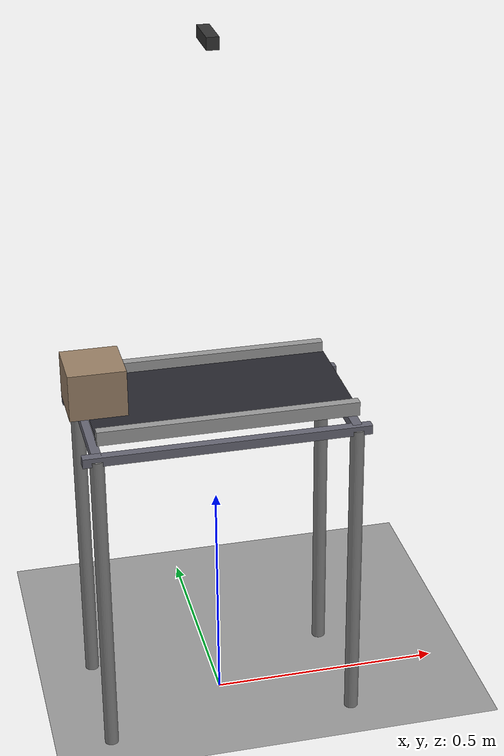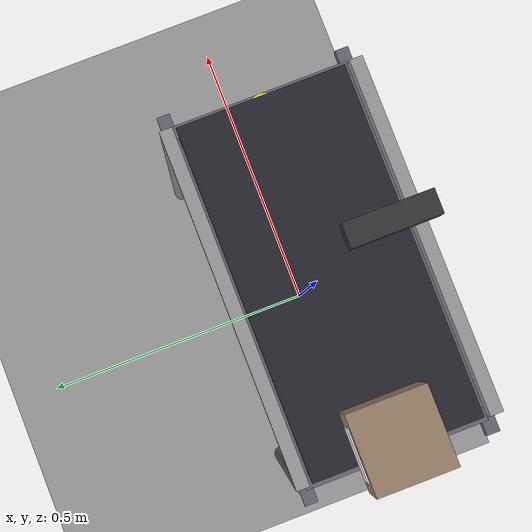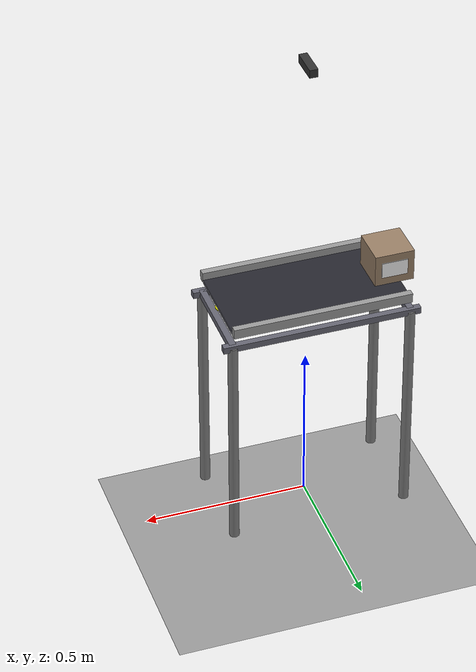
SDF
<?xml version="1.0" ?>
<sdf version="1.9">
  <world name="conveyor_world">

    <!-- Plugins mínimos requeridos -->
    <plugin filename="gz-sim-physics-system" name="gz::sim::systems::Physics"/>
    <plugin filename="gz-sim-user-commands-system" name="gz::sim::systems::UserCommands"/>
    <plugin filename="gz-sim-scene-broadcaster-system" name="gz::sim::systems::SceneBroadcaster"/>
    <!-- Plugin de sensores para la cámara -->
    <plugin filename="gz-sim-sensors-system" name="gz::sim::systems::Sensors">
      <render_engine>ogre2</render_engine>
    </plugin>

    <!-- Luz -->
    <light type="directional" name="sun">
      <pose>5 5 10 0 0 0</pose>
      <diffuse>1 1 1 1</diffuse>
      <direction>-0.5 -0.5 -1</direction>
    </light>

    <!-- Suelo -->
    <model name="ground_plane">
      <static>true</static>
      <link name="link">
        <collision name="collision">
          <geometry>
            <plane><normal>0 0 1</normal><size>10 10</size></plane>
          </geometry>
        </collision>
        <visual name="visual">
          <geometry>
            <plane><normal>0 0 1</normal><size>10 10</size></plane>
          </geometry>
          <material><ambient>0.6 0.6 0.6 1</ambient></material>
        </visual>
      </link>
    </model>

    <!-- BANDA TRANSPORTADORA - Chasis Industrial con 4 Patas                 -->
    <model name="conveyor">
      <static>true</static>
      <pose>0 0 0 0 0 0</pose>

      <!-- 4 PATAS ESTRUCTURALES (Cilíndricas) -->
      <link name="leg_front_left">
        <pose>-0.27 0.14 0.35 0 0 0</pose>
        <visual name="visual">
          <geometry><cylinder><radius>0.015</radius><length>0.70</length></cylinder></geometry>
          <material><ambient>0.5 0.5 0.5 1</ambient><diffuse>0.5 0.5 0.5 1</diffuse></material>
        </visual>
        <collision name="collision">
          <geometry><cylinder><radius>0.015</radius><length>0.70</length></cylinder></geometry>
        </collision>
      </link>

      <link name="leg_front_right">
        <pose>-0.27 -0.14 0.35 0 0 0</pose>
        <visual name="visual">
          <geometry><cylinder><radius>0.015</radius><length>0.70</length></cylinder></geometry>
          <material><ambient>0.5 0.5 0.5 1</ambient><diffuse>0.5 0.5 0.5 1</diffuse></material>
        </visual>
        <collision name="collision">
          <geometry><cylinder><radius>0.015</radius><length>0.70</length></cylinder></geometry>
        </collision>
      </link>

      <link name="leg_back_left">
        <pose>0.27 0.14 0.35 0 0 0</pose>
        <visual name="visual">
          <geometry><cylinder><radius>0.015</radius><length>0.70</length></cylinder></geometry>
          <material><ambient>0.5 0.5 0.5 1</ambient><diffuse>0.5 0.5 0.5 1</diffuse></material>
        </visual>
        <collision name="collision">
          <geometry><cylinder><radius>0.015</radius><length>0.70</length></cylinder></geometry>
        </collision>
      </link>

      <link name="leg_back_right">
        <pose>0.27 -0.14 0.35 0 0 0</pose>
        <visual name="visual">
          <geometry><cylinder><radius>0.015</radius><length>0.70</length></cylinder></geometry>
          <material><ambient>0.5 0.5 0.5 1</ambient><diffuse>0.5 0.5 0.5 1</diffuse></material>
        </visual>
        <collision name="collision">
          <geometry><cylinder><radius>0.015</radius><length>0.70</length></cylinder></geometry>
        </collision>
      </link>

      <!-- MARCO SUPERIOR -->
      <link name="frame_front">
        <pose>0 0.14 0.70 0 0 0</pose>
        <visual name="visual">
          <geometry><box><size>0.60 0.02 0.02</size></box></geometry>
          <material><ambient>0.4 0.4 0.45 1</ambient><diffuse>0.4 0.4 0.45 1</diffuse></material>
        </visual>
        <collision name="collision">
          <geometry><box><size>0.60 0.02 0.02</size></box></geometry>
        </collision>
      </link>

      <link name="frame_back">
        <pose>0 -0.14 0.70 0 0 0</pose>
        <visual name="visual">
          <geometry><box><size>0.60 0.02 0.02</size></box></geometry>
          <material><ambient>0.4 0.4 0.45 1</ambient><diffuse>0.4 0.4 0.45 1</diffuse></material>
        </visual>
        <collision name="collision">
          <geometry><box><size>0.60 0.02 0.02</size></box></geometry>
        </collision>
      </link>

      <link name="frame_left">
        <pose>0.27 0 0.70 0 0 0</pose>
        <visual name="visual">
          <geometry><box><size>0.02 0.28 0.02</size></box></geometry>
          <material><ambient>0.4 0.4 0.45 1</ambient><diffuse>0.4 0.4 0.45 1</diffuse></material>
        </visual>
        <collision name="collision">
          <geometry><box><size>0.02 0.28 0.02</size></box></geometry>
        </collision>
      </link>

      <link name="frame_right">
        <pose>-0.27 0 0.70 0 0 0</pose>
        <visual name="visual">
          <geometry><box><size>0.02 0.28 0.02</size></box></geometry>
          <material><ambient>0.4 0.4 0.45 1</ambient><diffuse>0.4 0.4 0.45 1</diffuse></material>
        </visual>
        <collision name="collision">
          <geometry><box><size>0.02 0.28 0.02</size></box></geometry>
        </collision>
      </link>

      <!-- SUPERFICIE DE LA BANDA (con colisión) -->
      <link name="belt_surface">
        <pose>0 0 0.745 0 0 0</pose>
        <visual name="visual">
          <geometry><box><size>0.54 0.26 0.01</size></box></geometry>
          <material><ambient>0.15 0.15 0.18 1</ambient><diffuse>0.15 0.15 0.18 1</diffuse></material>
        </visual>
        <collision name="collision">
          <geometry><box><size>0.54 0.26 0.01</size></box></geometry>
        </collision>
      </link>

      <!-- Rieles laterales -->
      <link name="left_rail">
        <pose>0 0.145 0.755 0 0 0</pose>
        <visual name="visual">
          <geometry><box><size>0.54 0.02 0.03</size></box></geometry>
          <material><ambient>0.6 0.6 0.6 1</ambient></material>
        </visual>
        <collision name="collision">
          <geometry><box><size>0.54 0.02 0.03</size></box></geometry>
        </collision>
      </link>

      <link name="right_rail">
        <pose>0 -0.145 0.755 0 0 0</pose>
        <visual name="visual">
          <geometry><box><size>0.54 0.02 0.03</size></box></geometry>
          <material><ambient>0.6 0.6 0.6 1</ambient></material>
        </visual>
        <collision name="collision">
          <geometry><box><size>0.54 0.02 0.03</size></box></geometry>
        </collision>
      </link>

      <!-- Marcadores visuales -->
      <link name="spawn_marker">
        <pose>-0.25 0 0.741 0 0 0</pose>
        <visual name="visual">
          <geometry><cylinder><radius>0.025</radius><length>0.002</length></cylinder></geometry>
          <material><ambient>0 0.8 0 1</ambient><diffuse>0 0.8 0 1</diffuse></material>
        </visual>
      </link>

      <link name="pick_marker">
        <pose>0.25 0 0.741 0 0 0</pose>
        <visual name="visual">
          <geometry><cylinder><radius>0.025</radius><length>0.002</length></cylinder></geometry>
          <material><ambient>0.9 0.9 0 1</ambient><diffuse>0.9 0.9 0 1</diffuse></material>
        </visual>
      </link>
    </model>

    <!-- CAJA INDUSTRIAL (Dimensiones: 0.12 x 0.12 x 0.10m)                   -->
    <!-- Z = 0.80m (superficie 0.75 + mitad altura 0.05)                      -->
    <model name="box_1">
      <pose>-0.25 0 0.80 0 0 0</pose>
      <link name="link">
        <kinematic>true</kinematic>
        <inertial>
          <mass>1.0</mass>
          <inertia>
            <ixx>0.003</ixx><iyy>0.003</iyy><izz>0.003</izz>
          </inertia>
        </inertial>
        <collision name="collision">
          <geometry><box><size>0.12 0.12 0.10</size></box></geometry>
        </collision>
        <!-- Cuerpo principal - Cartón Industrial -->
        <visual name="body_visual">
          <geometry><box><size>0.12 0.12 0.10</size></box></geometry>
          <material>
            <ambient>0.6 0.5 0.4 1</ambient>
            <diffuse>0.6 0.5 0.4 1</diffuse>
          </material>
        </visual>
        <!-- Etiqueta de envío (blanca) -->
        <visual name="label_visual">
          <pose>0 0.061 0 0 0 0</pose>
          <geometry><box><size>0.08 0.002 0.05</size></box></geometry>
          <material>
            <ambient>0.95 0.95 0.95 1</ambient>
            <diffuse>0.95 0.95 0.95 1</diffuse>
          </material>
        </visual>
      </link>
    </model>

    <!-- CÁMARA PARA VISIÓN ARTIFICIAL                                         -->
    <!-- Posición: 1.5m sobre la banda, mirando hacia abajo                   -->
    <model name="conveyor_camera">
      <!-- Altura 1.5m sobre banda (0.75 + 0.75), pitch = π/2 = mirando abajo -->
      <pose>0 0 1.50 0 1.5708 0</pose>
      <static>true</static>
      <link name="camera_link">

        <!-- Visual de la cámara -->
        <visual name="camera_visual">
          <geometry>
            <box><size>0.025 0.090 0.025</size></box>
          </geometry>
          <material>
            <ambient>0.1 0.1 0.1 1</ambient>
            <diffuse>0.2 0.2 0.2 1</diffuse>
          </material>
        </visual>

        <!-- Sensor de cámara RGB -->
        <sensor name="color_camera" type="camera">
          <pose>0 0 0 0 0 0</pose>
          <always_on>1</always_on>
          <update_rate>15</update_rate>
          <visualize>true</visualize>
          <topic>camera/color/image_raw</topic>
          <camera>
            <!-- FOV similar a RealSense D435i -->
            <horizontal_fov>0.976</horizontal_fov>
            <image>
              <width>640</width>
              <height>480</height>
              <format>RGB_INT8</format>
            </image>
            <clip>
              <near>0.1</near>
              <far>20.0</far>
            </clip>
          </camera>
        </sensor>

      </link>
    </model>

  </world>
</sdf>
